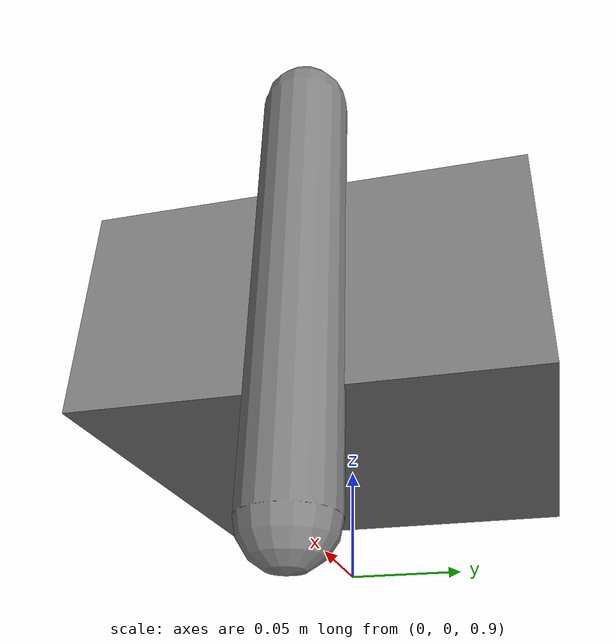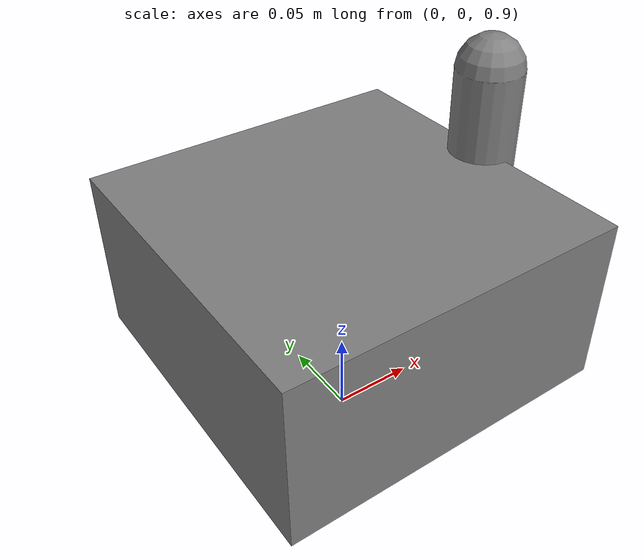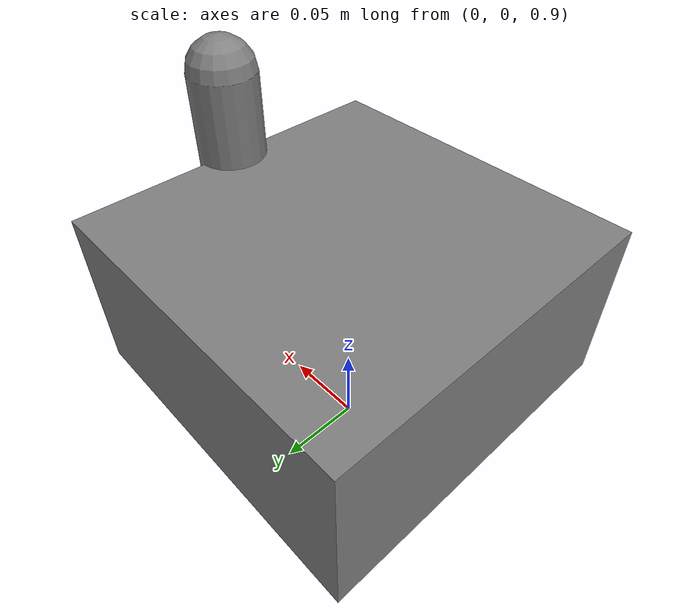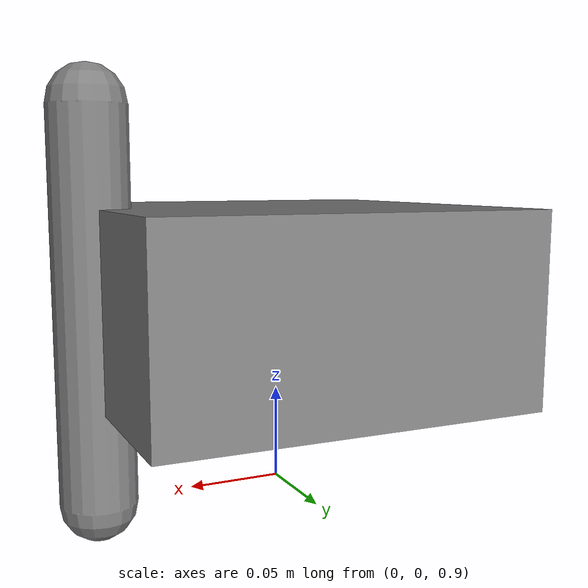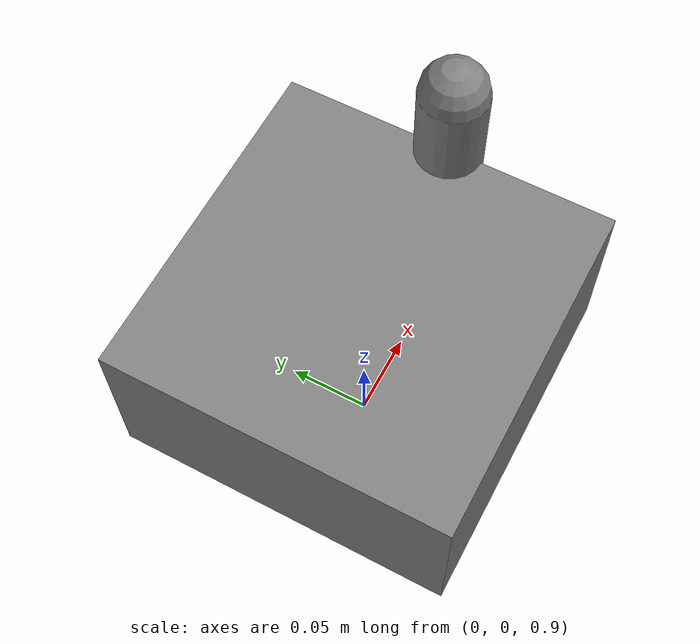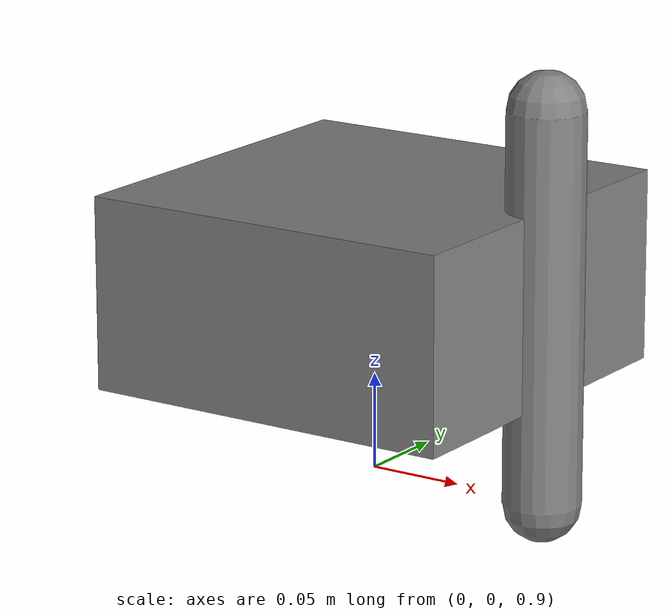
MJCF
<!-- 测试 fixture：故意只保留 j1，RobotModel 请求的 j2 在模型中不存在。 -->
<mujoco model="missing_joint">
  <worldbody>
    <body name="base" pos="0 0 1">
      <freejoint/>
      <site name="imu" pos="0 0 0"/>
      <geom type="box" size="0.1 0.1 0.05" mass="1"/>
      <body name="link1" pos="0.1 0 0">
        <joint name="j1" axis="0 1 0"/>
        <geom type="capsule" size="0.02 0.1" mass="0.1"/>
      </body>
    </body>
  </worldbody>
  <actuator>
    <motor joint="j1"/>
  </actuator>
  <sensor>
    <framequat name="imu_quat" objtype="site" objname="imu"/>
    <gyro name="imu_gyro" site="imu"/>
    <accelerometer name="imu_acc" site="imu"/>
  </sensor>
</mujoco>
